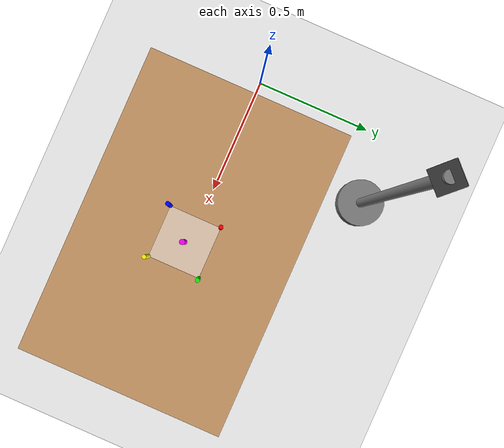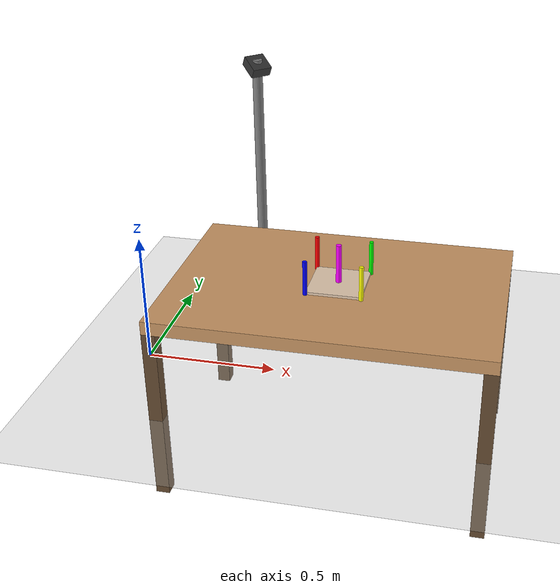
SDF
<?xml version="1.0" ?>
<sdf version="1.6">
  <world name="chess_world">

    <!-- Physics configuration -->
    <physics name="1ms" type="ignored">
      <max_step_size>0.001</max_step_size>
      <real_time_factor>1.0</real_time_factor>
      <real_time_update_rate>1000</real_time_update_rate>
      <gravity>0 0 -9.81</gravity>
    </physics>

    <!-- Essential Gazebo plugins for Ignition -->
    <plugin filename="libignition-gazebo-physics-system.so" name="ignition::gazebo::systems::Physics"/>
    <plugin filename="libignition-gazebo-user-commands-system.so" name="ignition::gazebo::systems::UserCommands"/>
    <plugin filename="libignition-gazebo-scene-broadcaster-system.so" name="ignition::gazebo::systems::SceneBroadcaster"/>
    <plugin filename="libignition-gazebo-contact-system.so" name="ignition::gazebo::systems::Contact"/>
    <plugin filename="libignition-gazebo-sensors-system.so" name="ignition::gazebo::systems::Sensors">
      <render_engine>ogre2</render_engine>
    </plugin>

    <!-- Improved lighting -->
    <light type="directional" name="sun">
      <cast_shadows>true</cast_shadows>
      <pose>2 2 4 0 0.5 -0.5</pose>
      <diffuse>0.9 0.9 0.8 1</diffuse>
      <specular>0.3 0.3 0.3 1</specular>
      <attenuation>
        <range>1000</range>
        <constant>0.9</constant>
        <linear>0.01</linear>
        <quadratic>0.001</quadratic>
      </attenuation>
      <direction>-0.5 -0.5 -0.8</direction>
    </light>

    <!-- Additional overhead light -->
    <light type="point" name="overhead_light">
      <cast_shadows>false</cast_shadows>
      <pose>0.75 0 1.5 0 0 0</pose>
      <diffuse>0.8 0.8 0.9 1</diffuse>
      <specular>0.2 0.2 0.2 1</specular>
      <attenuation>
        <range>3.0</range>
        <constant>0.8</constant>
        <linear>0.1</linear>
        <quadratic>0.02</quadratic>
      </attenuation>
    </light>

    <!-- Ground plane -->
    <model name="ground_plane">
      <static>true</static>
      <link name="link">
        <collision name="collision">
          <geometry>
            <plane>
              <normal>0 0 1</normal>
              <size>100 100</size>
            </plane>
          </geometry>
          <surface>
            <contact>
              <collide_bitmask>0xffff</collide_bitmask>
            </contact>
            <friction>
              <ode>
                <mu>0.8</mu>
                <mu2>0.8</mu2>
              </ode>
            </friction>
          </surface>
        </collision>
        <visual name="visual">
          <geometry>
            <plane>
              <normal>0 0 1</normal>
              <size>100 100</size>
            </plane>
          </geometry>
          <material>
            <ambient>0.7 0.7 0.7 1</ambient>
            <diffuse>0.7 0.7 0.7 1</diffuse>
            <specular>0.3 0.3 0.3 1</specular>
          </material>
        </visual>
      </link>
    </model>

    <!-- Chess table -->
    <model name="chess_table">
      <pose>0.75 0 0.375 0 0 0</pose>
      <static>true</static>

      <!-- Table top -->
      <link name="table_top">
        <inertial>
          <mass>20.0</mass>
          <inertia>
            <ixx>1.33</ixx><ixy>0</ixy><ixz>0</ixz>
            <iyy>2.4</iyy><iyz>0</iyz>
            <izz>3.73</izz>
          </inertia>
        </inertial>
        <collision name="collision">
          <geometry>
            <box>
              <size>1.2 0.8 0.05</size>
            </box>
          </geometry>
          <surface>
            <contact>
              <collide_bitmask>0xffff</collide_bitmask>
            </contact>
            <friction>
              <ode>
                <mu>0.6</mu>
                <mu2>0.6</mu2>
              </ode>
            </friction>
          </surface>
        </collision>
        <visual name="visual">
          <geometry>
            <box>
              <size>1.2 0.8 0.05</size>
            </box>
          </geometry>
          <material>
            <ambient>0.8 0.6 0.4 1</ambient>
            <diffuse>0.8 0.6 0.4 1</diffuse>
            <specular>0.2 0.2 0.2 1</specular>
          </material>
        </visual>
      </link>

      <!-- Table legs -->
      <link name="leg_fl">
        <pose>0.575 0.375 -0.35 0 0 0</pose>
        <inertial>
          <mass>2.0</mass>
          <inertia>
            <ixx>0.02</ixx><ixy>0</ixy><ixz>0</ixz>
            <iyy>0.02</iyy><iyz>0</iyz>
            <izz>0.001</izz>
          </inertia>
        </inertial>
        <collision name="collision">
          <geometry>
            <box>
              <size>0.05 0.05 0.7</size>
            </box>
          </geometry>
        </collision>
        <visual name="visual">
          <geometry>
            <box>
              <size>0.05 0.05 0.7</size>
            </box>
          </geometry>
          <material>
            <ambient>0.4 0.3 0.2 1</ambient>
            <diffuse>0.4 0.3 0.2 1</diffuse>
          </material>
        </visual>
      </link>

      <link name="leg_fr">
        <pose>0.575 -0.375 -0.35 0 0 0</pose>
        <inertial>
          <mass>2.0</mass>
          <inertia>
            <ixx>0.02</ixx><ixy>0</ixy><ixz>0</ixz>
            <iyy>0.02</iyy><iyz>0</iyz>
            <izz>0.001</izz>
          </inertia>
        </inertial>
        <collision name="collision">
          <geometry>
            <box>
              <size>0.05 0.05 0.7</size>
            </box>
          </geometry>
        </collision>
        <visual name="visual">
          <geometry>
            <box>
              <size>0.05 0.05 0.7</size>
            </box>
          </geometry>
          <material>
            <ambient>0.4 0.3 0.2 1</ambient>
            <diffuse>0.4 0.3 0.2 1</diffuse>
          </material>
        </visual>
      </link>

      <link name="leg_bl">
        <pose>-0.575 0.375 -0.35 0 0 0</pose>
        <inertial>
          <mass>2.0</mass>
          <inertia>
            <ixx>0.02</ixx><ixy>0</ixy><ixz>0</ixz>
            <iyy>0.02</iyy><iyz>0</iyz>
            <izz>0.001</izz>
          </inertia>
        </inertial>
        <collision name="collision">
          <geometry>
            <box>
              <size>0.05 0.05 0.7</size>
            </box>
          </geometry>
        </collision>
        <visual name="visual">
          <geometry>
            <box>
              <size>0.05 0.05 0.7</size>
            </box>
          </geometry>
          <material>
            <ambient>0.4 0.3 0.2 1</ambient>
            <diffuse>0.4 0.3 0.2 1</diffuse>
          </material>
        </visual>
      </link>

      <link name="leg_br">
        <pose>-0.575 -0.375 -0.35 0 0 0</pose>
        <inertial>
          <mass>2.0</mass>
          <inertia>
            <ixx>0.02</ixx><ixy>0</ixy><ixz>0</ixz>
            <iyy>0.02</iyy><iyz>0</iyz>
            <izz>0.001</izz>
          </inertia>
        </inertial>
        <collision name="collision">
          <geometry>
            <box>
              <size>0.05 0.05 0.7</size>
            </box>
          </geometry>
        </collision>
        <visual name="visual">
          <geometry>
            <box>
              <size>0.05 0.05 0.7</size>
            </box>
          </geometry>
          <material>
            <ambient>0.4 0.3 0.2 1</ambient>
            <diffuse>0.4 0.3 0.2 1</diffuse>
          </material>
        </visual>
      </link>

      <!-- Fixed joints for legs -->
      <joint name="top_to_leg_fl" type="fixed">
        <parent>table_top</parent>
        <child>leg_fl</child>
      </joint>
      <joint name="top_to_leg_fr" type="fixed">
        <parent>table_top</parent>
        <child>leg_fr</child>
      </joint>
      <joint name="top_to_leg_bl" type="fixed">
        <parent>table_top</parent>
        <child>leg_bl</child>
      </joint>
      <joint name="top_to_leg_br" type="fixed">
        <parent>table_top</parent>
        <child>leg_br</child>
      </joint>
    </model>

    <!-- Camera mount -->
    <model name="camera_mount">
      <pose>0.3 0.6 0.0 0 0 0</pose>
      <static>true</static>

      <!-- Mount base -->
      <link name="mount_base">
        <inertial>
          <mass>5.0</mass>
          <inertia>
            <ixx>0.02</ixx><ixy>0</ixy><ixz>0</ixz>
            <iyy>0.02</iyy><iyz>0</iyz>
            <izz>0.04</izz>
          </inertia>
        </inertial>
        <collision name="collision">
          <geometry>
            <cylinder>
              <radius>0.1</radius>
              <length>0.05</length>
            </cylinder>
          </geometry>
        </collision>
        <visual name="visual">
          <geometry>
            <cylinder>
              <radius>0.1</radius>
              <length>0.05</length>
            </cylinder>
          </geometry>
          <material>
            <ambient>0.5 0.5 0.5 1</ambient>
            <diffuse>0.5 0.5 0.5 1</diffuse>
          </material>
        </visual>
      </link>

      <!-- Vertical pole -->
      <link name="pole">
        <pose>0 0 0.525 0 0 0</pose>
        <inertial>
          <mass>3.0</mass>
          <inertia>
            <ixx>0.25</ixx><ixy>0</ixy><ixz>0</ixz>
            <iyy>0.25</iyy><iyz>0</iyz>
            <izz>0.001</izz>
          </inertia>
        </inertial>
        <collision name="collision">
          <geometry>
            <cylinder>
              <radius>0.02</radius>
              <length>1.0</length>
            </cylinder>
          </geometry>
        </collision>
        <visual name="visual">
          <geometry>
            <cylinder>
              <radius>0.02</radius>
              <length>1.0</length>
            </cylinder>
          </geometry>
          <material>
            <ambient>0.5 0.5 0.5 1</ambient>
            <diffuse>0.5 0.5 0.5 1</diffuse>
          </material>
        </visual>
      </link>

      <!-- Camera housing -->
      <link name="camera_housing">
        <pose>0 0 1.0 0 0.5 -0.785</pose>
        <inertial>
          <mass>0.5</mass>
          <inertia>
            <ixx>0.001</ixx><ixy>0</ixy><ixz>0</ixz>
            <iyy>0.001</iyy><iyz>0</iyz>
            <izz>0.001</izz>
          </inertia>
        </inertial>
        <collision name="collision">
          <geometry>
            <box>
              <size>0.08 0.08 0.04</size>
            </box>
          </geometry>
        </collision>
        <visual name="visual">
          <geometry>
            <box>
              <size>0.08 0.08 0.04</size>
            </box>
          </geometry>
          <material>
            <ambient>0.2 0.2 0.2 1</ambient>
            <diffuse>0.2 0.2 0.2 1</diffuse>
          </material>
        </visual>

        <sensor type="camera" name="chess_camera">
          <update_rate>30.0</update_rate>
          <camera name="head">
            <horizontal_fov>1.0472</horizontal_fov>
            <image>
              <width>1920</width>
              <height>1080</height>
              <format>R8G8B8</format>
            </image>
            <clip>
              <near>0.02</near>
              <far>10.0</far>
            </clip>
            <noise>
              <type>gaussian</type>
              <mean>0.0</mean>
              <stddev>0.007</stddev>
            </noise>
          </camera>
        </sensor>
      </link>

      <!-- Fixed joints -->
      <joint name="base_to_pole" type="fixed">
        <parent>mount_base</parent>
        <child>pole</child>
      </joint>

      <joint name="pole_to_camera" type="fixed">
        <parent>pole</parent>
        <child>camera_housing</child>
      </joint>
    </model>

    <!-- Chess board -->
    <model name="chess_board">
      <pose>0.75 0.0 0.405 0 0 0</pose>
      <static>false</static>
      <link name="link">
        <inertial>
          <mass>0.1</mass>
          <inertia>
            <ixx>0.00060</ixx><ixy>0</ixy><ixz>0</ixz>
            <iyy>0.00060</iyy><iyz>0</iyz>
            <izz>0.00120</izz>
          </inertia>
        </inertial>
        <collision name="collision">
          <geometry>
            <box>
              <size>0.20 0.20 0.01</size>
            </box>
          </geometry>
          <surface>
            <contact>
              <collide_bitmask>0xffff</collide_bitmask>
            </contact>
            <friction>
              <ode>
                <mu>0.6</mu>
                <mu2>0.6</mu2>
              </ode>
            </friction>
          </surface>
        </collision>
        <visual name="visual">
          <geometry>
            <box>
              <size>0.20 0.20 0.01</size>
            </box>
          </geometry>
          <material>
            <ambient>0.9 0.8 0.7 1</ambient>
            <diffuse>0.9 0.8 0.7 1</diffuse>
            <specular>0.3 0.3 0.3 1</specular>
          </material>
        </visual>
      </link>
    </model>

    <!-- Front Left Corner Marker - RED -->
    <model name="corner_marker_front_left">
      <pose>0.65 0.10 0.405 0 0 0</pose>
      <static>true</static>
      <link name="link">
        <visual name="visual">
          <geometry>
            <cylinder>
              <radius>0.008</radius>
              <length>0.25</length>
            </cylinder>
          </geometry>
          <material>
            <ambient>1.0 0.0 0.0 1</ambient>
            <diffuse>1.0 0.0 0.0 1</diffuse>
            <specular>0.8 0.0 0.0 1</specular>
          </material>
        </visual>
      </link>
    </model>

    <!-- Front Right Corner Marker - GREEN -->
    <model name="corner_marker_front_right">
      <pose>0.85 0.10 0.405 0 0 0</pose>
      <static>true</static>
      <link name="link">
        <visual name="visual">
          <geometry>
            <cylinder>
              <radius>0.008</radius>
              <length>0.25</length>
            </cylinder>
          </geometry>
          <material>
            <ambient>0.0 1.0 0.0 1</ambient>
            <diffuse>0.0 1.0 0.0 1</diffuse>
            <specular>0.0 0.8 0.0 1</specular>
          </material>
        </visual>
      </link>
    </model>

    <!-- Back Left Corner Marker - BLUE -->
    <model name="corner_marker_back_left">
      <pose>0.65 -0.10 0.405 0 0 0</pose>
      <static>true</static>
      <link name="link">
        <visual name="visual">
          <geometry>
            <cylinder>
              <radius>0.008</radius>
              <length>0.25</length>
            </cylinder>
          </geometry>
          <material>
            <ambient>0.0 0.0 1.0 1</ambient>
            <diffuse>0.0 0.0 1.0 1</diffuse>
            <specular>0.0 0.0 0.8 1</specular>
          </material>
        </visual>
      </link>
    </model>

    <!-- Back Right Corner Marker - YELLOW -->
    <model name="corner_marker_back_right">
      <pose>0.85 -0.10 0.405 0 0 0</pose>
      <static>true</static>
      <link name="link">
        <visual name="visual">
          <geometry>
            <cylinder>
              <radius>0.008</radius>
              <length>0.25</length>
            </cylinder>
          </geometry>
          <material>
            <ambient>1.0 1.0 0.0 1</ambient>
            <diffuse>1.0 1.0 0.0 1</diffuse>
            <specular>0.8 0.8 0.0 1</specular>
          </material>
        </visual>
      </link>
    </model>

    <!-- Center marker for reference - MAGENTA -->
    <model name="board_center_marker">
      <pose>0.75 0.0 0.405 0 0 0</pose>
      <static>true</static>
      <link name="link">
        <visual name="visual">
          <geometry>
            <cylinder>
              <radius>0.010</radius>
              <length>0.30</length>
            </cylinder>
          </geometry>
          <material>
            <ambient>1.0 0.0 1.0 1</ambient>
            <diffuse>1.0 0.0 1.0 1</diffuse>
            <specular>0.8 0.0 0.8 1</specular>
          </material>
        </visual>
      </link>
    </model>

  </world>
</sdf>
